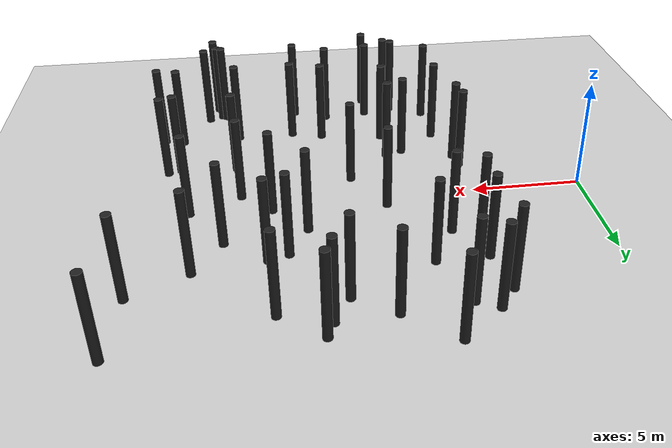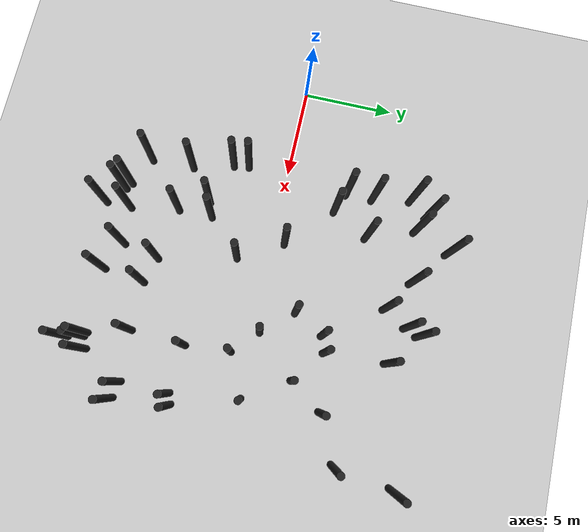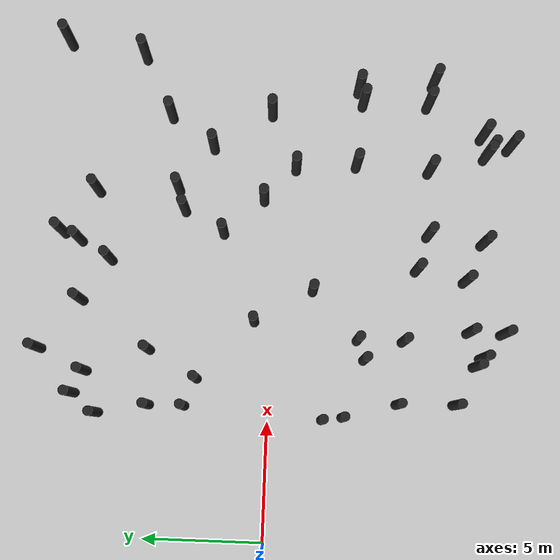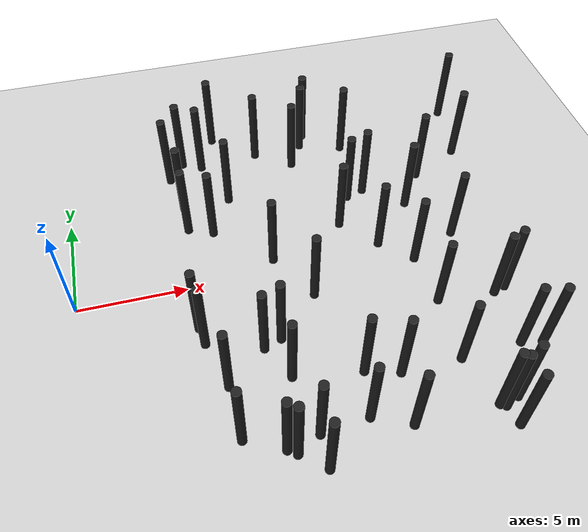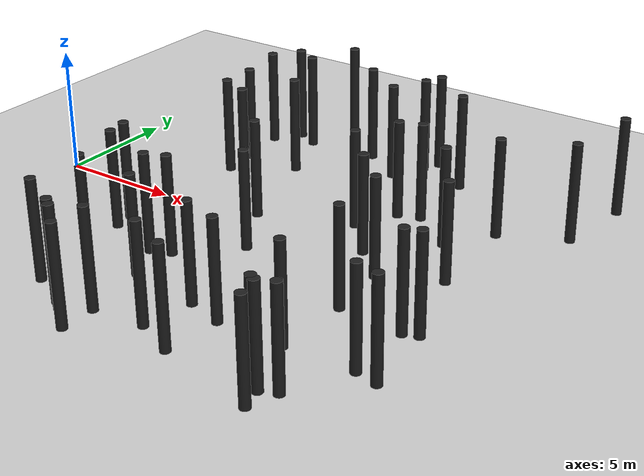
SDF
<sdf version="1.5">
 <world name="default">
  <model name="ground_plane">
   <static>1</static>
   <link name="link">
    <collision name="collision">
     <geometry><plane><normal>0 0 1</normal><size>200 200</size></plane></geometry>
     <surface><friction><ode><mu>100</mu><mu2>50</mu2></ode></friction></surface>
    </collision>
    <visual name="visual">
     <cast_shadows>0</cast_shadows>
     <geometry><plane><normal>0 0 1</normal><size>200 200</size></plane></geometry>
     <material>
      <script><uri>file://media/materials/scripts/gazebo.material</uri><name>Gazebo/Grey</name></script>
     </material>
    </visual>
   </link>
  </model>
  <model name="forest_clone_1">
   <pose>14.5137 4.01554 -0.000699 0 -0 0</pose>
   <static>1</static>
   <link name="cylinder::link">
    <inertial>
     <mass>1</mass>
     <inertia><ixx>0.083</ixx><ixy>0</ixy><ixz>0</ixz><iyy>0.083</iyy><iyz>0</iyz><izz>0.083</izz></inertia>
    </inertial>
    <collision name="collision">
     <geometry><cylinder><radius>0.2</radius><length>4</length></cylinder></geometry>
    </collision>
    <visual name="visual">
     <geometry><cylinder><radius>0.2</radius><length>4</length></cylinder></geometry>
     <material>
      <script><uri>file://media/materials/scripts/gazebo.material</uri><name>Gazebo/Black</name></script>
     </material>
    </visual>
    <pose>0 0 2 0 -0 0</pose>
   </link>
  </model>
  <model name="forest_clone_8">
   <pose>9.75084 7.86056 0.000782 0 -0 0</pose>
   <static>1</static>
   <link name="cylinder::link">
    <inertial>
     <mass>1</mass>
     <inertia><ixx>0.083</ixx><ixy>0</ixy><ixz>0</ixz><iyy>0.083</iyy><iyz>0</iyz><izz>0.083</izz></inertia>
    </inertial>
    <collision name="collision">
     <geometry><cylinder><radius>0.2</radius><length>4</length></cylinder></geometry>
    </collision>
    <visual name="visual">
     <geometry><cylinder><radius>0.2</radius><length>4</length></cylinder></geometry>
     <material>
      <script><uri>file://media/materials/scripts/gazebo.material</uri><name>Gazebo/Black</name></script>
     </material>
    </visual>
    <pose>0 0 2 0 -0 0</pose>
   </link>
  </model>
  <model name="forest_clone_10">
   <pose>7.9358 -8.71365 -0.004995 0 -0 0</pose>
   <static>1</static>
   <link name="cylinder::link">
    <inertial>
     <mass>1</mass>
     <inertia><ixx>0.083</ixx><ixy>0</ixy><ixz>0</ixz><iyy>0.083</iyy><iyz>0</iyz><izz>0.083</izz></inertia>
    </inertial>
    <collision name="collision">
     <geometry><cylinder><radius>0.2</radius><length>4</length></cylinder></geometry>
    </collision>
    <visual name="visual">
     <geometry><cylinder><radius>0.2</radius><length>4</length></cylinder></geometry>
     <material>
      <script><uri>file://media/materials/scripts/gazebo.material</uri><name>Gazebo/Black</name></script>
     </material>
    </visual>
    <pose>0 0 2 0 -0 0</pose>
   </link>
  </model>
  <model name="forest_clone_12">
   <pose>17.822 0.259165 0.002743 0 -0 0</pose>
   <static>1</static>
   <link name="cylinder::link">
    <inertial>
     <mass>1</mass>
     <inertia><ixx>0.083</ixx><ixy>0</ixy><ixz>0</ixz><iyy>0.083</iyy><iyz>0</iyz><izz>0.083</izz></inertia>
    </inertial>
    <collision name="collision">
     <geometry><cylinder><radius>0.2</radius><length>4</length></cylinder></geometry>
    </collision>
    <visual name="visual">
     <geometry><cylinder><radius>0.2</radius><length>4</length></cylinder></geometry>
     <material>
      <script><uri>file://media/materials/scripts/gazebo.material</uri><name>Gazebo/Black</name></script>
     </material>
    </visual>
    <pose>0 0 2 0 -0 0</pose>
   </link>
  </model>
  <model name="forest_clone_15">
   <pose>5.15631 -2.23053 0.001161 0 -0 0</pose>
   <static>1</static>
   <link name="cylinder::link">
    <inertial>
     <mass>1</mass>
     <inertia><ixx>0.083</ixx><ixy>0</ixy><ixz>0</ixz><iyy>0.083</iyy><iyz>0</iyz><izz>0.083</izz></inertia>
    </inertial>
    <collision name="collision">
     <geometry><cylinder><radius>0.2</radius><length>4</length></cylinder></geometry>
    </collision>
    <visual name="visual">
     <geometry><cylinder><radius>0.2</radius><length>4</length></cylinder></geometry>
     <material>
      <script><uri>file://media/materials/scripts/gazebo.material</uri><name>Gazebo/Black</name></script>
     </material>
    </visual>
    <pose>0 0 2 0 -0 0</pose>
   </link>
  </model>
  <model name="forest_clone_17">
   <pose>8.5037 -5.47283 -0.003477 0 -0 0</pose>
   <static>1</static>
   <link name="cylinder::link">
    <inertial>
     <mass>1</mass>
     <inertia><ixx>0.083</ixx><ixy>0</ixy><ixz>0</ixz><iyy>0.083</iyy><iyz>0</iyz><izz>0.083</izz></inertia>
    </inertial>
    <collision name="collision">
     <geometry><cylinder><radius>0.2</radius><length>4</length></cylinder></geometry>
    </collision>
    <visual name="visual">
     <geometry><cylinder><radius>0.2</radius><length>4</length></cylinder></geometry>
     <material>
      <script><uri>file://media/materials/scripts/gazebo.material</uri><name>Gazebo/Black</name></script>
     </material>
    </visual>
    <pose>0 0 2 0 -0 0</pose>
   </link>
  </model>
  <model name="forest_clone_19">
   <pose>20.0552 5.6297 -0.002144 0 -0 0</pose>
   <static>1</static>
   <link name="cylinder::link">
    <inertial>
     <mass>1</mass>
     <inertia><ixx>0.083</ixx><ixy>0</ixy><ixz>0</ixz><iyy>0.083</iyy><iyz>0</iyz><izz>0.083</izz></inertia>
    </inertial>
    <collision name="collision">
     <geometry><cylinder><radius>0.2</radius><length>4</length></cylinder></geometry>
    </collision>
    <visual name="visual">
     <geometry><cylinder><radius>0.2</radius><length>4</length></cylinder></geometry>
     <material>
      <script><uri>file://media/materials/scripts/gazebo.material</uri><name>Gazebo/Black</name></script>
     </material>
    </visual>
    <pose>0 0 2 0 -0 0</pose>
   </link>
  </model>
  <model name="forest_clone_22">
   <pose>19.3052 -6.39627 0.002223 0 -0 0</pose>
   <static>1</static>
   <link name="cylinder::link">
    <inertial>
     <mass>1</mass>
     <inertia><ixx>0.083</ixx><ixy>0</ixy><ixz>0</ixz><iyy>0.083</iyy><iyz>0</iyz><izz>0.083</izz></inertia>
    </inertial>
    <collision name="collision">
     <geometry><cylinder><radius>0.2</radius><length>4</length></cylinder></geometry>
    </collision>
    <visual name="visual">
     <geometry><cylinder><radius>0.2</radius><length>4</length></cylinder></geometry>
     <material>
      <script><uri>file://media/materials/scripts/gazebo.material</uri><name>Gazebo/Black</name></script>
     </material>
    </visual>
    <pose>0 0 2 0 -0 0</pose>
   </link>
  </model>
  <model name="forest_clone_23">
   <pose>15.7641 -3.30514 -0.001914 0 -0 0</pose>
   <static>1</static>
   <link name="cylinder::link">
    <inertial>
     <mass>1</mass>
     <inertia><ixx>0.083</ixx><ixy>0</ixy><ixz>0</ixz><iyy>0.083</iyy><iyz>0</iyz><izz>0.083</izz></inertia>
    </inertial>
    <collision name="collision">
     <geometry><cylinder><radius>0.2</radius><length>4</length></cylinder></geometry>
    </collision>
    <visual name="visual">
     <geometry><cylinder><radius>0.2</radius><length>4</length></cylinder></geometry>
     <material>
      <script><uri>file://media/materials/scripts/gazebo.material</uri><name>Gazebo/Black</name></script>
     </material>
    </visual>
    <pose>0 0 2 0 -0 0</pose>
   </link>
  </model>
  <model name="forest_clone_24">
   <pose>7.577 -8.45598 -0.001071 0 -0 0</pose>
   <static>1</static>
   <link name="cylinder::link">
    <inertial>
     <mass>1</mass>
     <inertia><ixx>0.083</ixx><ixy>0</ixy><ixz>0</ixz><iyy>0.083</iyy><iyz>0</iyz><izz>0.083</izz></inertia>
    </inertial>
    <collision name="collision">
     <geometry><cylinder><radius>0.2</radius><length>4</length></cylinder></geometry>
    </collision>
    <visual name="visual">
     <geometry><cylinder><radius>0.2</radius><length>4</length></cylinder></geometry>
     <material>
      <script><uri>file://media/materials/scripts/gazebo.material</uri><name>Gazebo/Black</name></script>
     </material>
    </visual>
    <pose>0 0 2 0 -0 0</pose>
   </link>
  </model>
  <model name="forest_clone_25">
   <pose>6.67753 2.99067 -0.003952 0 -0 0</pose>
   <static>1</static>
   <link name="cylinder::link">
    <inertial>
     <mass>1</mass>
     <inertia><ixx>0.083</ixx><ixy>0</ixy><ixz>0</ixz><iyy>0.083</iyy><iyz>0</iyz><izz>0.083</izz></inertia>
    </inertial>
    <collision name="collision">
     <geometry><cylinder><radius>0.2</radius><length>4</length></cylinder></geometry>
    </collision>
    <visual name="visual">
     <geometry><cylinder><radius>0.2</radius><length>4</length></cylinder></geometry>
     <material>
      <script><uri>file://media/materials/scripts/gazebo.material</uri><name>Gazebo/Black</name></script>
     </material>
    </visual>
    <pose>0 0 2 0 -0 0</pose>
   </link>
  </model>
  <model name="forest_clone_26">
   <pose>6.83102 7.58389 0.004837 0 -0 0</pose>
   <static>1</static>
   <link name="cylinder::link">
    <inertial>
     <mass>1</mass>
     <inertia><ixx>0.083</ixx><ixy>0</ixy><ixz>0</ixz><iyy>0.083</iyy><iyz>0</iyz><izz>0.083</izz></inertia>
    </inertial>
    <collision name="collision">
     <geometry><cylinder><radius>0.2</radius><length>4</length></cylinder></geometry>
    </collision>
    <visual name="visual">
     <geometry><cylinder><radius>0.2</radius><length>4</length></cylinder></geometry>
     <material>
      <script><uri>file://media/materials/scripts/gazebo.material</uri><name>Gazebo/Black</name></script>
     </material>
    </visual>
    <pose>0 0 2 0 -0 0</pose>
   </link>
  </model>
  <model name="forest_clone_29">
   <pose>14.199 0.46277 0.000633 0 -0 0</pose>
   <static>1</static>
   <link name="cylinder::link">
    <inertial>
     <mass>1</mass>
     <inertia><ixx>0.083</ixx><ixy>0</ixy><ixz>0</ixz><iyy>0.083</iyy><iyz>0</iyz><izz>0.083</izz></inertia>
    </inertial>
    <collision name="collision">
     <geometry><cylinder><radius>0.2</radius><length>4</length></cylinder></geometry>
    </collision>
    <visual name="visual">
     <geometry><cylinder><radius>0.2</radius><length>4</length></cylinder></geometry>
     <material>
      <script><uri>file://media/materials/scripts/gazebo.material</uri><name>Gazebo/Black</name></script>
     </material>
    </visual>
    <pose>0 0 2 0 -0 0</pose>
   </link>
  </model>
  <model name="forest_clone_36">
   <pose>15.5521 -0.809213 0.003796 0 -0 0</pose>
   <static>1</static>
   <link name="cylinder::link">
    <inertial>
     <mass>1</mass>
     <inertia><ixx>0.083</ixx><ixy>0</ixy><ixz>0</ixz><iyy>0.083</iyy><iyz>0</iyz><izz>0.083</izz></inertia>
    </inertial>
    <collision name="collision">
     <geometry><cylinder><radius>0.2</radius><length>4</length></cylinder></geometry>
    </collision>
    <visual name="visual">
     <geometry><cylinder><radius>0.2</radius><length>4</length></cylinder></geometry>
     <material>
      <script><uri>file://media/materials/scripts/gazebo.material</uri><name>Gazebo/Black</name></script>
     </material>
    </visual>
    <pose>0 0 2 0 -0 0</pose>
   </link>
  </model>
  <model name="forest_clone_37">
   <pose>16.7115 -9.62116 -0.003995 0 -0 0</pose>
   <static>1</static>
   <link name="cylinder::link">
    <inertial>
     <mass>1</mass>
     <inertia><ixx>0.083</ixx><ixy>0</ixy><ixz>0</ixz><iyy>0.083</iyy><iyz>0</iyz><izz>0.083</izz></inertia>
    </inertial>
    <collision name="collision">
     <geometry><cylinder><radius>0.2</radius><length>4</length></cylinder></geometry>
    </collision>
    <visual name="visual">
     <geometry><cylinder><radius>0.2</radius><length>4</length></cylinder></geometry>
     <material>
      <script><uri>file://media/materials/scripts/gazebo.material</uri><name>Gazebo/Black</name></script>
     </material>
    </visual>
    <pose>0 0 2 0 -0 0</pose>
   </link>
  </model>
  <model name="forest_clone_44">
   <pose>15.6181 -6.32503 -0.002952 0 -0 0</pose>
   <static>1</static>
   <link name="cylinder::link">
    <inertial>
     <mass>1</mass>
     <inertia><ixx>0.083</ixx><ixy>0</ixy><ixz>0</ixz><iyy>0.083</iyy><iyz>0</iyz><izz>0.083</izz></inertia>
    </inertial>
    <collision name="collision">
     <geometry><cylinder><radius>0.2</radius><length>4</length></cylinder></geometry>
    </collision>
    <visual name="visual">
     <geometry><cylinder><radius>0.2</radius><length>4</length></cylinder></geometry>
     <material>
      <script><uri>file://media/materials/scripts/gazebo.material</uri><name>Gazebo/Black</name></script>
     </material>
    </visual>
    <pose>0 0 2 0 -0 0</pose>
   </link>
  </model>
  <model name="forest_clone_51">
   <pose>12.7447 2.09471 -0.001897 0 -0 0</pose>
   <static>1</static>
   <link name="cylinder::link">
    <inertial>
     <mass>1</mass>
     <inertia><ixx>0.083</ixx><ixy>0</ixy><ixz>0</ixz><iyy>0.083</iyy><iyz>0</iyz><izz>0.083</izz></inertia>
    </inertial>
    <collision name="collision">
     <geometry><cylinder><radius>0.2</radius><length>4</length></cylinder></geometry>
    </collision>
    <visual name="visual">
     <geometry><cylinder><radius>0.2</radius><length>4</length></cylinder></geometry>
     <material>
      <script><uri>file://media/materials/scripts/gazebo.material</uri><name>Gazebo/Black</name></script>
     </material>
    </visual>
    <pose>0 0 2 0 -0 0</pose>
   </link>
  </model>
  <model name="forest_clone_52">
   <pose>16.2916 -8.64391 0.003343 0 -0 0</pose>
   <static>1</static>
   <link name="cylinder::link">
    <inertial>
     <mass>1</mass>
     <inertia><ixx>0.083</ixx><ixy>0</ixy><ixz>0</ixz><iyy>0.083</iyy><iyz>0</iyz><izz>0.083</izz></inertia>
    </inertial>
    <collision name="collision">
     <geometry><cylinder><radius>0.2</radius><length>4</length></cylinder></geometry>
    </collision>
    <visual name="visual">
     <geometry><cylinder><radius>0.2</radius><length>4</length></cylinder></geometry>
     <material>
      <script><uri>file://media/materials/scripts/gazebo.material</uri><name>Gazebo/Black</name></script>
     </material>
    </visual>
    <pose>0 0 2 0 -0 0</pose>
   </link>
  </model>
  <model name="forest_clone_58">
   <pose>9.11435 0.693786 0.004038 0 -0 0</pose>
   <static>1</static>
   <link name="cylinder::link">
    <inertial>
     <mass>1</mass>
     <inertia><ixx>0.083</ixx><ixy>0</ixy><ixz>0</ixz><iyy>0.083</iyy><iyz>0</iyz><izz>0.083</izz></inertia>
    </inertial>
    <collision name="collision">
     <geometry><cylinder><radius>0.2</radius><length>4</length></cylinder></geometry>
    </collision>
    <visual name="visual">
     <geometry><cylinder><radius>0.2</radius><length>4</length></cylinder></geometry>
     <material>
      <script><uri>file://media/materials/scripts/gazebo.material</uri><name>Gazebo/Black</name></script>
     </material>
    </visual>
    <pose>0 0 2 0 -0 0</pose>
   </link>
  </model>
  <model name="forest_clone_60">
   <pose>12.2292 8.00595 0.003583 0 -0 0</pose>
   <static>1</static>
   <link name="cylinder::link">
    <inertial>
     <mass>1</mass>
     <inertia><ixx>0.083</ixx><ixy>0</ixy><ixz>0</ixz><iyy>0.083</iyy><iyz>0</iyz><izz>0.083</izz></inertia>
    </inertial>
    <collision name="collision">
     <geometry><cylinder><radius>0.2</radius><length>4</length></cylinder></geometry>
    </collision>
    <visual name="visual">
     <geometry><cylinder><radius>0.2</radius><length>4</length></cylinder></geometry>
     <material>
      <script><uri>file://media/materials/scripts/gazebo.material</uri><name>Gazebo/Black</name></script>
     </material>
    </visual>
    <pose>0 0 2 0 -0 0</pose>
   </link>
  </model>
  <model name="forest_clone_62">
   <pose>7.79568 4.9876 0.002756 0 -0 0</pose>
   <static>1</static>
   <link name="cylinder::link">
    <inertial>
     <mass>1</mass>
     <inertia><ixx>0.083</ixx><ixy>0</ixy><ixz>0</ixz><iyy>0.083</iyy><iyz>0</iyz><izz>0.083</izz></inertia>
    </inertial>
    <collision name="collision">
     <geometry><cylinder><radius>0.2</radius><length>4</length></cylinder></geometry>
    </collision>
    <visual name="visual">
     <geometry><cylinder><radius>0.2</radius><length>4</length></cylinder></geometry>
     <material>
      <script><uri>file://media/materials/scripts/gazebo.material</uri><name>Gazebo/Black</name></script>
     </material>
    </visual>
    <pose>0 0 2 0 -0 0</pose>
   </link>
  </model>
  <model name="forest_clone_65">
   <pose>16.3187 2.63364 -0.000558 0 -0 0</pose>
   <static>1</static>
   <link name="cylinder::link">
    <inertial>
     <mass>1</mass>
     <inertia><ixx>0.083</ixx><ixy>0</ixy><ixz>0</ixz><iyy>0.083</iyy><iyz>0</iyz><izz>0.083</izz></inertia>
    </inertial>
    <collision name="collision">
     <geometry><cylinder><radius>0.2</radius><length>4</length></cylinder></geometry>
    </collision>
    <visual name="visual">
     <geometry><cylinder><radius>0.2</radius><length>4</length></cylinder></geometry>
     <material>
      <script><uri>file://media/materials/scripts/gazebo.material</uri><name>Gazebo/Black</name></script>
     </material>
    </visual>
    <pose>0 0 2 0 -0 0</pose>
   </link>
  </model>
  <model name="forest_clone_69">
   <pose>12.6681 -8.64279 -0.004902 0 -0 0</pose>
   <static>1</static>
   <link name="cylinder::link">
    <inertial>
     <mass>1</mass>
     <inertia><ixx>0.083</ixx><ixy>0</ixy><ixz>0</ixz><iyy>0.083</iyy><iyz>0</iyz><izz>0.083</izz></inertia>
    </inertial>
    <collision name="collision">
     <geometry><cylinder><radius>0.2</radius><length>4</length></cylinder></geometry>
    </collision>
    <visual name="visual">
     <geometry><cylinder><radius>0.2</radius><length>4</length></cylinder></geometry>
     <material>
      <script><uri>file://media/materials/scripts/gazebo.material</uri><name>Gazebo/Black</name></script>
     </material>
    </visual>
    <pose>0 0 2 0 -0 0</pose>
   </link>
  </model>
  <model name="forest_clone_71">
   <pose>17.5765 4.42719 -0.001861 0 -0 0</pose>
   <static>1</static>
   <link name="cylinder::link">
    <inertial>
     <mass>1</mass>
     <inertia><ixx>0.083</ixx><ixy>0</ixy><ixz>0</ixz><iyy>0.083</iyy><iyz>0</iyz><izz>0.083</izz></inertia>
    </inertial>
    <collision name="collision">
     <geometry><cylinder><radius>0.2</radius><length>4</length></cylinder></geometry>
    </collision>
    <visual name="visual">
     <geometry><cylinder><radius>0.2</radius><length>4</length></cylinder></geometry>
     <material>
      <script><uri>file://media/materials/scripts/gazebo.material</uri><name>Gazebo/Black</name></script>
     </material>
    </visual>
    <pose>0 0 2 0 -0 0</pose>
   </link>
  </model>
  <model name="forest_clone_75">
   <pose>8.49426 -3.59042 -0.003223 0 -0 0</pose>
   <static>1</static>
   <link name="cylinder::link">
    <inertial>
     <mass>1</mass>
     <inertia><ixx>0.083</ixx><ixy>0</ixy><ixz>0</ixz><iyy>0.083</iyy><iyz>0</iyz><izz>0.083</izz></inertia>
    </inertial>
    <collision name="collision">
     <geometry><cylinder><radius>0.2</radius><length>4</length></cylinder></geometry>
    </collision>
    <visual name="visual">
     <geometry><cylinder><radius>0.2</radius><length>4</length></cylinder></geometry>
     <material>
      <script><uri>file://media/materials/scripts/gazebo.material</uri><name>Gazebo/Black</name></script>
     </material>
    </visual>
    <pose>0 0 2 0 -0 0</pose>
   </link>
  </model>
  <model name="forest_clone_82">
   <pose>18.385 -3.50208 5.1e-05 0 -0 0</pose>
   <static>1</static>
   <link name="cylinder::link">
    <inertial>
     <mass>1</mass>
     <inertia><ixx>0.083</ixx><ixy>0</ixy><ixz>0</ixz><iyy>0.083</iyy><iyz>0</iyz><izz>0.083</izz></inertia>
    </inertial>
    <collision name="collision">
     <geometry><cylinder><radius>0.2</radius><length>4</length></cylinder></geometry>
    </collision>
    <visual name="visual">
     <geometry><cylinder><radius>0.2</radius><length>4</length></cylinder></geometry>
     <material>
      <script><uri>file://media/materials/scripts/gazebo.material</uri><name>Gazebo/Black</name></script>
     </material>
    </visual>
    <pose>0 0 2 0 -0 0</pose>
   </link>
  </model>
  <model name="forest_clone_83">
   <pose>17.1378 -8.48723 -0.00473 0 -0 0</pose>
   <static>1</static>
   <link name="cylinder::link">
    <inertial>
     <mass>1</mass>
     <inertia><ixx>0.083</ixx><ixy>0</ixy><ixz>0</ixz><iyy>0.083</iyy><iyz>0</iyz><izz>0.083</izz></inertia>
    </inertial>
    <collision name="collision">
     <geometry><cylinder><radius>0.2</radius><length>4</length></cylinder></geometry>
    </collision>
    <visual name="visual">
     <geometry><cylinder><radius>0.2</radius><length>4</length></cylinder></geometry>
     <material>
      <script><uri>file://media/materials/scripts/gazebo.material</uri><name>Gazebo/Black</name></script>
     </material>
    </visual>
    <pose>0 0 2 0 -0 0</pose>
   </link>
  </model>
  <model name="forest_clone_86">
   <pose>12.9302 -6.35618 -0.001206 0 -0 0</pose>
   <static>1</static>
   <link name="cylinder::link">
    <inertial>
     <mass>1</mass>
     <inertia><ixx>0.083</ixx><ixy>0</ixy><ixz>0</ixz><iyy>0.083</iyy><iyz>0</iyz><izz>0.083</izz></inertia>
    </inertial>
    <collision name="collision">
     <geometry><cylinder><radius>0.2</radius><length>4</length></cylinder></geometry>
    </collision>
    <visual name="visual">
     <geometry><cylinder><radius>0.2</radius><length>4</length></cylinder></geometry>
     <material>
      <script><uri>file://media/materials/scripts/gazebo.material</uri><name>Gazebo/Black</name></script>
     </material>
    </visual>
    <pose>0 0 2 0 -0 0</pose>
   </link>
  </model>
  <model name="forest_clone_93">
   <pose>7.69955 9.52311 -0.001451 0 -0 0</pose>
   <static>1</static>
   <link name="cylinder::link">
    <inertial>
     <mass>1</mass>
     <inertia><ixx>0.083</ixx><ixy>0</ixy><ixz>0</ixz><iyy>0.083</iyy><iyz>0</iyz><izz>0.083</izz></inertia>
    </inertial>
    <collision name="collision">
     <geometry><cylinder><radius>0.2</radius><length>4</length></cylinder></geometry>
    </collision>
    <visual name="visual">
     <geometry><cylinder><radius>0.2</radius><length>4</length></cylinder></geometry>
     <material>
      <script><uri>file://media/materials/scripts/gazebo.material</uri><name>Gazebo/Black</name></script>
     </material>
    </visual>
    <pose>0 0 2 0 -0 0</pose>
   </link>
  </model>
  <model name="forest_clone_97">
   <pose>5.5387 3.45648 -0.000466 0 -0 0</pose>
   <static>1</static>
   <link name="cylinder::link">
    <inertial>
     <mass>1</mass>
     <inertia><ixx>0.083</ixx><ixy>0</ixy><ixz>0</ixz><iyy>0.083</iyy><iyz>0</iyz><izz>0.083</izz></inertia>
    </inertial>
    <collision name="collision">
     <geometry><cylinder><radius>0.2</radius><length>4</length></cylinder></geometry>
    </collision>
    <visual name="visual">
     <geometry><cylinder><radius>0.2</radius><length>4</length></cylinder></geometry>
     <material>
      <script><uri>file://media/materials/scripts/gazebo.material</uri><name>Gazebo/Black</name></script>
     </material>
    </visual>
    <pose>0 0 2 0 -0 0</pose>
   </link>
  </model>
  <model name="forest_clone_98">
   <pose>14.32 7.34301 -0.003064 0 -0 0</pose>
   <static>1</static>
   <link name="cylinder::link">
    <inertial>
     <mass>1</mass>
     <inertia><ixx>0.083</ixx><ixy>0</ixy><ixz>0</ixz><iyy>0.083</iyy><iyz>0</iyz><izz>0.083</izz></inertia>
    </inertial>
    <collision name="collision">
     <geometry><cylinder><radius>0.2</radius><length>4</length></cylinder></geometry>
    </collision>
    <visual name="visual">
     <geometry><cylinder><radius>0.2</radius><length>4</length></cylinder></geometry>
     <material>
      <script><uri>file://media/materials/scripts/gazebo.material</uri><name>Gazebo/Black</name></script>
     </material>
    </visual>
    <pose>0 0 2 0 -0 0</pose>
   </link>
  </model>
  <model name="forest_clone_99">
   <pose>7.69001 -3.89069 -0.004593 0 -0 0</pose>
   <static>1</static>
   <link name="cylinder::link">
    <inertial>
     <mass>1</mass>
     <inertia><ixx>0.083</ixx><ixy>0</ixy><ixz>0</ixz><iyy>0.083</iyy><iyz>0</iyz><izz>0.083</izz></inertia>
    </inertial>
    <collision name="collision">
     <geometry><cylinder><radius>0.2</radius><length>4</length></cylinder></geometry>
    </collision>
    <visual name="visual">
     <geometry><cylinder><radius>0.2</radius><length>4</length></cylinder></geometry>
     <material>
      <script><uri>file://media/materials/scripts/gazebo.material</uri><name>Gazebo/Black</name></script>
     </material>
    </visual>
    <pose>0 0 2 0 -0 0</pose>
   </link>
  </model>
  <model name="forest_clone_101">
   <pose>20.5357 8.79898 -0.002942 0 -0 0</pose>
   <static>1</static>
   <link name="cylinder::link">
    <inertial>
     <mass>1</mass>
     <inertia><ixx>0.083</ixx><ixy>0</ixy><ixz>0</ixz><iyy>0.083</iyy><iyz>0</iyz><izz>0.083</izz></inertia>
    </inertial>
    <collision name="collision">
     <geometry><cylinder><radius>0.2</radius><length>4</length></cylinder></geometry>
    </collision>
    <visual name="visual">
     <geometry><cylinder><radius>0.2</radius><length>4</length></cylinder></geometry>
     <material>
      <script><uri>file://media/materials/scripts/gazebo.material</uri><name>Gazebo/Black</name></script>
     </material>
    </visual>
    <pose>0 0 2 0 -0 0</pose>
   </link>
  </model>
  <model name="forest_clone_107">
   <pose>13.6367 3.72746 0.000978 0 -0 0</pose>
   <static>1</static>
   <link name="cylinder::link">
    <inertial>
     <mass>1</mass>
     <inertia><ixx>0.083</ixx><ixy>0</ixy><ixz>0</ixz><iyy>0.083</iyy><iyz>0</iyz><izz>0.083</izz></inertia>
    </inertial>
    <collision name="collision">
     <geometry><cylinder><radius>0.2</radius><length>4</length></cylinder></geometry>
    </collision>
    <visual name="visual">
     <geometry><cylinder><radius>0.2</radius><length>4</length></cylinder></geometry>
     <material>
      <script><uri>file://media/materials/scripts/gazebo.material</uri><name>Gazebo/Black</name></script>
     </material>
    </visual>
    <pose>0 0 2 0 -0 0</pose>
   </link>
  </model>
  <model name="forest_clone_110">
   <pose>11.4715 6.72312 0.000301 0 -0 0</pose>
   <static>1</static>
   <link name="cylinder::link">
    <inertial>
     <mass>1</mass>
     <inertia><ixx>0.083</ixx><ixy>0</ixy><ixz>0</ixz><iyy>0.083</iyy><iyz>0</iyz><izz>0.083</izz></inertia>
    </inertial>
    <collision name="collision">
     <geometry><cylinder><radius>0.2</radius><length>4</length></cylinder></geometry>
    </collision>
    <visual name="visual">
     <geometry><cylinder><radius>0.2</radius><length>4</length></cylinder></geometry>
     <material>
      <script><uri>file://media/materials/scripts/gazebo.material</uri><name>Gazebo/Black</name></script>
     </material>
    </visual>
    <pose>0 0 2 0 -0 0</pose>
   </link>
  </model>
  <model name="forest_clone_112">
   <pose>5.5296 4.9299 0.001356 0 -0 0</pose>
   <static>1</static>
   <link name="cylinder::link">
    <inertial>
     <mass>1</mass>
     <inertia><ixx>0.083</ixx><ixy>0</ixy><ixz>0</ixz><iyy>0.083</iyy><iyz>0</iyz><izz>0.083</izz></inertia>
    </inertial>
    <collision name="collision">
     <geometry><cylinder><radius>0.2</radius><length>4</length></cylinder></geometry>
    </collision>
    <visual name="visual">
     <geometry><cylinder><radius>0.2</radius><length>4</length></cylinder></geometry>
     <material>
      <script><uri>file://media/materials/scripts/gazebo.material</uri><name>Gazebo/Black</name></script>
     </material>
    </visual>
    <pose>0 0 2 0 -0 0</pose>
   </link>
  </model>
  <model name="forest_clone_113">
   <pose>5.13431 7.03123 -0.002805 0 -0 0</pose>
   <static>1</static>
   <link name="cylinder::link">
    <inertial>
     <mass>1</mass>
     <inertia><ixx>0.083</ixx><ixy>0</ixy><ixz>0</ixz><iyy>0.083</iyy><iyz>0</iyz><izz>0.083</izz></inertia>
    </inertial>
    <collision name="collision">
     <geometry><cylinder><radius>0.2</radius><length>4</length></cylinder></geometry>
    </collision>
    <visual name="visual">
     <geometry><cylinder><radius>0.2</radius><length>4</length></cylinder></geometry>
     <material>
      <script><uri>file://media/materials/scripts/gazebo.material</uri><name>Gazebo/Black</name></script>
     </material>
    </visual>
    <pose>0 0 2 0 -0 0</pose>
   </link>
  </model>
  <model name="forest_clone_118">
   <pose>10.4686 -1.68115 -0.001089 0 -0 0</pose>
   <static>1</static>
   <link name="cylinder::link">
    <inertial>
     <mass>1</mass>
     <inertia><ixx>0.083</ixx><ixy>0</ixy><ixz>0</ixz><iyy>0.083</iyy><iyz>0</iyz><izz>0.083</izz></inertia>
    </inertial>
    <collision name="collision">
     <geometry><cylinder><radius>0.2</radius><length>4</length></cylinder></geometry>
    </collision>
    <visual name="visual">
     <geometry><cylinder><radius>0.2</radius><length>4</length></cylinder></geometry>
     <material>
      <script><uri>file://media/materials/scripts/gazebo.material</uri><name>Gazebo/Black</name></script>
     </material>
    </visual>
    <pose>0 0 2 0 -0 0</pose>
   </link>
  </model>
  <model name="forest_clone_120">
   <pose>8.9711 -8.14993 0.004496 0 -0 0</pose>
   <static>1</static>
   <link name="cylinder::link">
    <inertial>
     <mass>1</mass>
     <inertia><ixx>0.083</ixx><ixy>0</ixy><ixz>0</ixz><iyy>0.083</iyy><iyz>0</iyz><izz>0.083</izz></inertia>
    </inertial>
    <collision name="collision">
     <geometry><cylinder><radius>0.2</radius><length>4</length></cylinder></geometry>
    </collision>
    <visual name="visual">
     <geometry><cylinder><radius>0.2</radius><length>4</length></cylinder></geometry>
     <material>
      <script><uri>file://media/materials/scripts/gazebo.material</uri><name>Gazebo/Black</name></script>
     </material>
    </visual>
    <pose>0 0 2 0 -0 0</pose>
   </link>
  </model>
  <model name="forest_clone_121">
   <pose>5.90266 -5.29538 0.001099 0 -0 0</pose>
   <static>1</static>
   <link name="cylinder::link">
    <inertial>
     <mass>1</mass>
     <inertia><ixx>0.083</ixx><ixy>0</ixy><ixz>0</ixz><iyy>0.083</iyy><iyz>0</iyz><izz>0.083</izz></inertia>
    </inertial>
    <collision name="collision">
     <geometry><cylinder><radius>0.2</radius><length>4</length></cylinder></geometry>
    </collision>
    <visual name="visual">
     <geometry><cylinder><radius>0.2</radius><length>4</length></cylinder></geometry>
     <material>
      <script><uri>file://media/materials/scripts/gazebo.material</uri><name>Gazebo/Black</name></script>
     </material>
    </visual>
    <pose>0 0 2 0 -0 0</pose>
   </link>
  </model>
  <model name="forest_clone_122">
   <pose>11.4641 -5.92992 0.003533 0 -0 0</pose>
   <static>1</static>
   <link name="cylinder::link">
    <inertial>
     <mass>1</mass>
     <inertia><ixx>0.083</ixx><ixy>0</ixy><ixz>0</ixz><iyy>0.083</iyy><iyz>0</iyz><izz>0.083</izz></inertia>
    </inertial>
    <collision name="collision">
     <geometry><cylinder><radius>0.2</radius><length>4</length></cylinder></geometry>
    </collision>
    <visual name="visual">
     <geometry><cylinder><radius>0.2</radius><length>4</length></cylinder></geometry>
     <material>
      <script><uri>file://media/materials/scripts/gazebo.material</uri><name>Gazebo/Black</name></script>
     </material>
    </visual>
    <pose>0 0 2 0 -0 0</pose>
   </link>
  </model>
  <model name="forest_clone_123">
   <pose>5.29079 -3.06913 -0.004291 0 -0 0</pose>
   <static>1</static>
   <link name="cylinder::link">
    <inertial>
     <mass>1</mass>
     <inertia><ixx>0.083</ixx><ixy>0</ixy><ixz>0</ixz><iyy>0.083</iyy><iyz>0</iyz><izz>0.083</izz></inertia>
    </inertial>
    <collision name="collision">
     <geometry><cylinder><radius>0.2</radius><length>4</length></cylinder></geometry>
    </collision>
    <visual name="visual">
     <geometry><cylinder><radius>0.2</radius><length>4</length></cylinder></geometry>
     <material>
      <script><uri>file://media/materials/scripts/gazebo.material</uri><name>Gazebo/Black</name></script>
     </material>
    </visual>
    <pose>0 0 2 0 -0 0</pose>
   </link>
  </model>
  <model name="forest_clone_129">
   <pose>12.5401 8.7286 -0.002355 0 -0 0</pose>
   <static>1</static>
   <link name="cylinder::link">
    <inertial>
     <mass>1</mass>
     <inertia><ixx>0.083</ixx><ixy>0</ixy><ixz>0</ixz><iyy>0.083</iyy><iyz>0</iyz><izz>0.083</izz></inertia>
    </inertial>
    <collision name="collision">
     <geometry><cylinder><radius>0.2</radius><length>4</length></cylinder></geometry>
    </collision>
    <visual name="visual">
     <geometry><cylinder><radius>0.2</radius><length>4</length></cylinder></geometry>
     <material>
      <script><uri>file://media/materials/scripts/gazebo.material</uri><name>Gazebo/Black</name></script>
     </material>
    </visual>
    <pose>0 0 2 0 -0 0</pose>
   </link>
  </model>
  <model name="forest_clone_131">
   <pose>5.90526 8.04519 -0.002986 0 -0 0</pose>
   <static>1</static>
   <link name="cylinder::link">
    <inertial>
     <mass>1</mass>
     <inertia><ixx>0.083</ixx><ixy>0</ixy><ixz>0</ixz><iyy>0.083</iyy><iyz>0</iyz><izz>0.083</izz></inertia>
    </inertial>
    <collision name="collision">
     <geometry><cylinder><radius>0.2</radius><length>4</length></cylinder></geometry>
    </collision>
    <visual name="visual">
     <geometry><cylinder><radius>0.2</radius><length>4</length></cylinder></geometry>
     <material>
      <script><uri>file://media/materials/scripts/gazebo.material</uri><name>Gazebo/Black</name></script>
     </material>
    </visual>
    <pose>0 0 2 0 -0 0</pose>
   </link>
  </model>
  <model name="forest_clone_135">
   <pose>11.0671 -7.93988 0.004089 0 -0 0</pose>
   <static>1</static>
   <link name="cylinder::link">
    <inertial>
     <mass>1</mass>
     <inertia><ixx>0.083</ixx><ixy>0</ixy><ixz>0</ixz><iyy>0.083</iyy><iyz>0</iyz><izz>0.083</izz></inertia>
    </inertial>
    <collision name="collision">
     <geometry><cylinder><radius>0.2</radius><length>4</length></cylinder></geometry>
    </collision>
    <visual name="visual">
     <geometry><cylinder><radius>0.2</radius><length>4</length></cylinder></geometry>
     <material>
      <script><uri>file://media/materials/scripts/gazebo.material</uri><name>Gazebo/Black</name></script>
     </material>
    </visual>
    <pose>0 0 2 0 -0 0</pose>
   </link>
  </model>
  <model name="forest_clone_137">
   <pose>5.97105 -7.66203 -0.002904 0 -0 0</pose>
   <static>1</static>
   <link name="cylinder::link">
    <inertial>
     <mass>1</mass>
     <inertia><ixx>0.083</ixx><ixy>0</ixy><ixz>0</ixz><iyy>0.083</iyy><iyz>0</iyz><izz>0.083</izz></inertia>
    </inertial>
    <collision name="collision">
     <geometry><cylinder><radius>0.2</radius><length>4</length></cylinder></geometry>
    </collision>
    <visual name="visual">
     <geometry><cylinder><radius>0.2</radius><length>4</length></cylinder></geometry>
     <material>
      <script><uri>file://media/materials/scripts/gazebo.material</uri><name>Gazebo/Black</name></script>
     </material>
    </visual>
    <pose>0 0 2 0 -0 0</pose>
   </link>
  </model>
  <model name="forest_clone_141">
   <pose>18.3911 -6.1915 -0.00332 0 -0 0</pose>
   <static>1</static>
   <link name="cylinder::link">
    <inertial>
     <mass>1</mass>
     <inertia><ixx>0.083</ixx><ixy>0</ixy><ixz>0</ixz><iyy>0.083</iyy><iyz>0</iyz><izz>0.083</izz></inertia>
    </inertial>
    <collision name="collision">
     <geometry><cylinder><radius>0.2</radius><length>4</length></cylinder></geometry>
    </collision>
    <visual name="visual">
     <geometry><cylinder><radius>0.2</radius><length>4</length></cylinder></geometry>
     <material>
      <script><uri>file://media/materials/scripts/gazebo.material</uri><name>Gazebo/Black</name></script>
     </material>
    </visual>
    <pose>0 0 2 0 -0 0</pose>
   </link>
  </model>
  <model name="forest_clone_143">
   <pose>18.9545 -3.30473 0.002577 0 -0 0</pose>
   <static>1</static>
   <link name="cylinder::link">
    <inertial>
     <mass>1</mass>
     <inertia><ixx>0.083</ixx><ixy>0</ixy><ixz>0</ixz><iyy>0.083</iyy><iyz>0</iyz><izz>0.083</izz></inertia>
    </inertial>
    <collision name="collision">
     <geometry><cylinder><radius>0.2</radius><length>4</length></cylinder></geometry>
    </collision>
    <visual name="visual">
     <geometry><cylinder><radius>0.2</radius><length>4</length></cylinder></geometry>
     <material>
      <script><uri>file://media/materials/scripts/gazebo.material</uri><name>Gazebo/Black</name></script>
     </material>
    </visual>
    <pose>0 0 2 0 -0 0</pose>
   </link>
  </model>
  <model name="forest_clone_144">
   <pose>8.95227 -9.56379 0.003051 0 -0 0</pose>
   <static>1</static>
   <link name="cylinder::link">
    <inertial>
     <mass>1</mass>
     <inertia><ixx>0.083</ixx><ixy>0</ixy><ixz>0</ixz><iyy>0.083</iyy><iyz>0</iyz><izz>0.083</izz></inertia>
    </inertial>
    <collision name="collision">
     <geometry><cylinder><radius>0.2</radius><length>4</length></cylinder></geometry>
    </collision>
    <visual name="visual">
     <geometry><cylinder><radius>0.2</radius><length>4</length></cylinder></geometry>
     <material>
      <script><uri>file://media/materials/scripts/gazebo.material</uri><name>Gazebo/Black</name></script>
     </material>
    </visual>
    <pose>0 0 2 0 -0 0</pose>
   </link>
  </model>
  <model name="forest_clone_147">
   <pose>16.5115 -8.76275 0.003158 0 -0 0</pose>
   <static>1</static>
   <link name="cylinder::link">
    <inertial>
     <mass>1</mass>
     <inertia><ixx>0.083</ixx><ixy>0</ixy><ixz>0</ixz><iyy>0.083</iyy><iyz>0</iyz><izz>0.083</izz></inertia>
    </inertial>
    <collision name="collision">
     <geometry><cylinder><radius>0.2</radius><length>4</length></cylinder></geometry>
    </collision>
    <visual name="visual">
     <geometry><cylinder><radius>0.2</radius><length>4</length></cylinder></geometry>
     <material>
      <script><uri>file://media/materials/scripts/gazebo.material</uri><name>Gazebo/Black</name></script>
     </material>
    </visual>
    <pose>0 0 2 0 -0 0</pose>
   </link>
  </model>
 </world>
</sdf>
